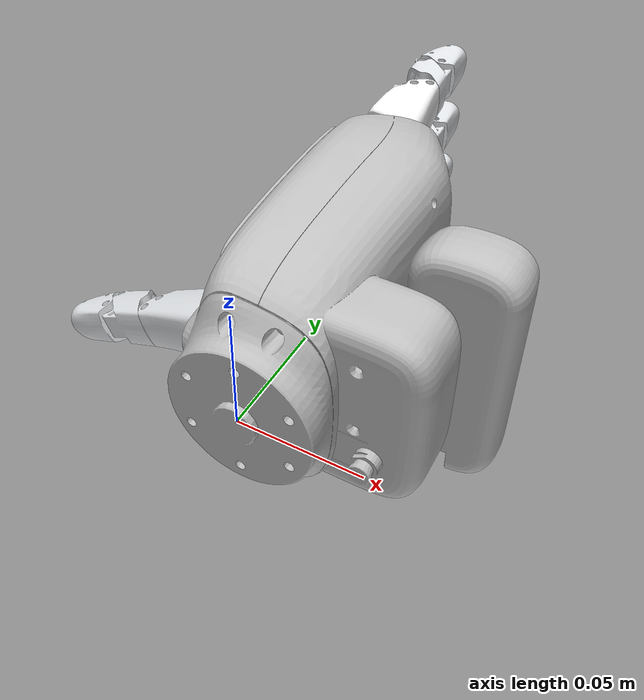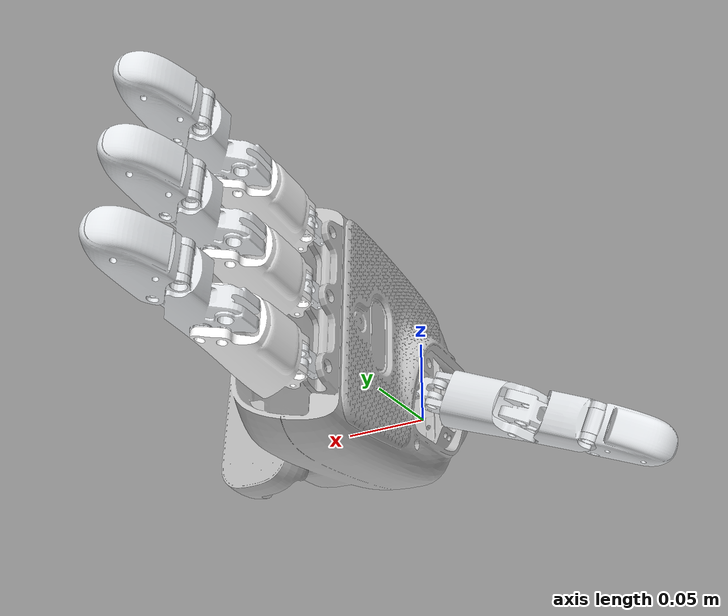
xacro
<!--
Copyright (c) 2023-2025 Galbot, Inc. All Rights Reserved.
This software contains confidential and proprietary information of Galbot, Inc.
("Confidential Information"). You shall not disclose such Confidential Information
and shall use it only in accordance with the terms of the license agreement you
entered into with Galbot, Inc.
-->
<?xml version="1.0"?>

<robot name="test_hand"
    xmlns:xacro="http://ros.org/wiki/xacro">
    <!-- Include-->
    <xacro:include filename="$(find galbot_description)/urdf/galbot_one_charlie/galbot_hand/galbot_left_hand.xacro" />
    <!-- Properties -->
    <xacro:property name="M_PI" value="3.1415926535897931" />
    <!-- Parent link -->
    <link name="base_link" />
    <xacro:galbot_left_hand parent="base_link">
        <origin xyz="0 0 0" rpy="0 0 0" />
    </xacro:galbot_left_hand>
</robot>

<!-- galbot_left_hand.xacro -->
<robot xmlns:xacro="http://www.ros.org/wiki/xacro" name="galbot_left_hand">
  <xacro:macro name="inertial_matrix" params="mass">
    <inertial>
      <mass value="${mass}"/>
      <inertia ixx="1.0" ixy="0.0" ixz="0.0" iyy="0.5" iyz="0.0" izz="1.0"/>
    </inertial>
  </xacro:macro>
  <xacro:macro name="Box_inertial_matrix" params="m l w h">
    <inertial>
      <mass value="${m}"/>
      <inertia ixx="${m*(h*h + l*l)/12}" ixy="0" ixz="0" iyy="${m*(w*w + l*l)/12}" iyz="0" izz="${m*(w*w + h*h)/12}"/>
    </inertial>
  </xacro:macro>
  <xacro:macro name="galbot_left_hand" params="parent *origin name:=galbot_hand">
    <xacro:property name="M_PI" value="3.1415926535897931"/>

    <joint name="${name}_joint" type="fixed">
      <xacro:insert_block name="origin"/>
      <parent link="${parent}"/>
      <child link="${name}_base_link"/>
    </joint>
    <link name="${name}_base_link">
      <inertial>
        <origin xyz="0.0082426499546434 0.0688400826362062 0.00066904058606776" rpy="0 0 0"/>
        <mass value="0.250361410722848"/>
        <inertia ixx="0.000451009774708177" ixy="4.34532396591773E-06" ixz="9.13519050609304E-07" iyy="0.00028655291942187" iyz="6.75652280731711E-06" izz="0.000219205453464452"/>
      </inertial>
      <visual>
        <origin xyz="0 0 0" rpy="0 0 0"/>
        <geometry>
          <mesh
            filename="package://galbot_one_charlie_description/meshes/galbot_hand/base_link_left.stl"/>
        </geometry>
        <material name="">
          <color rgba="0.752941176470588 0.752941176470588 0.752941176470588 1"/>
        </material>
      </visual>
      <collision>
        <origin xyz="0 0 0" rpy="0 0 0"/>
        <geometry>
          <mesh
            filename="package://galbot_one_charlie_description/meshes/galbot_hand/base_link_left.stl"/>
        </geometry>
      </collision>
    </link>
    <link name="${name}_finger1_link1">
      <inertial>
        <origin xyz="0.0049990479204143 8.87043942465748E-09 1.56826572561553E-10" rpy="0 0 0"/>
        <mass value="0.000494193898584918"/>
        <inertia ixx="5.34240304366998E-09" ixy="1.40165523546363E-14" ixz="1.58814446596312E-16" iyy="1.3373535733049E-08" iyz="-8.36240707742665E-16" izz="1.57645609851102E-08"/>
      </inertial>
      <visual>
        <origin xyz="0 0 0" rpy="0 0 0"/>
        <geometry>
          <mesh
            filename="package://galbot_one_charlie_description/meshes/galbot_hand/left_finger1_link1.stl"/>
        </geometry>
        <material name="">
          <color rgba="0.898039215686275 0.909803921568627 0.92156862745098 1"/>
        </material>
      </visual>
      <collision>
        <origin xyz="0 0 0" rpy="0 0 0"/>
        <geometry>
          <mesh
            filename="package://galbot_one_charlie_description/meshes/galbot_hand/left_finger1_link1.stl"/>
        </geometry>
      </collision>
    </link>
    <joint name="${name}_finger1_joint1" type="revolute">
      <origin xyz="-0.03285 0.069 -0.0138" rpy="-1.5708 0.43633 -3.1416"/>
      <parent link="${name}_base_link"/>
      <child link="${name}_finger1_link1"/>
      <axis xyz="0 0 1"/>
      <limit lower="-0.436333" upper="0.436333" effort="10" velocity="1.5"/>
    </joint>
    <link name="${name}_finger1_link2">
      <inertial>
        <origin xyz="-0.019763814098464 0.0119884370804753 -6.74106527299989E-08" rpy="0 0 0"/>
         <mass value="0.0104414043171337"/>
        <inertia ixx="2.26938802597705E-06" ixy="6.95671474272708E-07" ixz="4.84261342651834E-12" iyy="1.95674472909177E-06" iyz="-1.63443414489251E-11" izz="2.6403675046715E-06"/>
      </inertial>
      <visual>
         <origin xyz="0 0 0" rpy="0 0 0"/>
        <geometry>
          <mesh
            filename="package://galbot_one_charlie_description/meshes/galbot_hand/left_finger1_link2.stl"/>
        </geometry>
        <material name="">
          <color rgba="0.898039215686275 0.909803921568627 0.92156862745098 1"/>
        </material>
      </visual>
      <collision>
         <origin xyz="0 0 0" rpy="0 0 0"/>
        <geometry>
          <mesh
            filename="package://galbot_one_charlie_description/meshes/galbot_hand/left_finger1_link2.stl"/>
        </geometry>
      </collision>
    </link>
    <joint name="${name}_finger1_joint2" type="revolute">
      <origin xyz="0.012 0 0" rpy="-1.5708 0.86998 -3.1416"/>
      <parent link="${name}_finger1_link1"/>
      <child link="${name}_finger1_link2"/>
      <axis xyz="0 0 -1"/>
      <limit lower="0" upper="1.50551734" effort="10" velocity="1.5"/>
    </joint>
    <link name="${name}_finger1_link3">
      <inertial>
         <origin xyz="0.0120682639015778 0.015724151161845 -9.74408693628359E-08" rpy="0 0 0"/>
         <mass value="0.00769687851220105"/>
        <inertia ixx="1.17260853356787E-06" ixy="-4.07923446815966E-07" ixz="-5.33297576143919E-12" iyy="8.88278129831767E-07" iyz="6.47568421551231E-12" izz="1.48324891392563E-06"/>
      </inertial>
      <visual>
         <origin xyz="0 0 0" rpy="0 0 0"/>
        <geometry>
          <mesh
            filename="package://galbot_one_charlie_description/meshes/galbot_hand/left_finger1_link3.stl"/>
        </geometry>
        <material name="">
          <color rgba="0.898039215686275 0.909803921568627 0.92156862745098 1"/>
        </material>
      </visual>
      <collision>
         <origin xyz="0 0 0" rpy="0 0 0"/>
        <geometry>
          <mesh
            filename="package://galbot_one_charlie_description/meshes/galbot_hand/left_finger1_link3.stl"/>
        </geometry>
      </collision>
    </link>
    <joint name="${name}_finger1_joint3" type="revolute">
      <origin xyz="-0.03095 0.030567 0" rpy="-3.1416 0 -3.0848"/>
      <parent link="${name}_finger1_link2"/>
      <child link="${name}_finger1_link3"/>
      <axis xyz="0 0 1"/>
      <limit lower="0" upper="1.23805297" effort="10" velocity="1.5"/>
    </joint>
    <link name="${name}_finger1_link4">
      <inertial>
         <origin xyz="0.0137391542777864 0.0052384549865301 6.8093028111893E-08" rpy="0 0 0"/>
         <mass value="0.00601170990282722"/>
        <inertia ixx="3.64164120565208E-07" ixy="9.03182223249479E-08" ixz="4.11160375971961E-11" iyy="6.52648406186183E-07" iyz="2.64088107653073E-11" izz="5.53508591348595E-07"/>
      </inertial>
      <visual>
         <origin xyz="0 0 0" rpy="0 0 0"/>
        <geometry>
          <mesh
            filename="package://galbot_one_charlie_description/meshes/galbot_hand/left_finger1_link4.stl"/>
        </geometry>
        <material name="">
          <color rgba="0.898039215686275 0.909803921568627 0.92156862745098 1"/>
        </material>
      </visual>
      <collision>
         <origin xyz="0 0 0" rpy="0 0 0"/>
        <geometry>
          <mesh
            filename="package://galbot_one_charlie_description/meshes/galbot_hand/left_finger1_link4.stl"/>
        </geometry>
      </collision>
    </link>
    <joint name="${name}_finger1_joint4" type="revolute">
      <origin xyz="0.024254 0.030534 0" rpy="0 0 0.82545"/>
      <parent link="${name}_finger1_link3"/>
      <child link="${name}_finger1_link4"/>
      <axis xyz="0 0 1"/>
      <limit lower="0" upper="1.07637884" effort="10" velocity="1.5"/>
    </joint>
    <link name="${name}_finger1_end_effector_link" />
    <joint name="${name}_finger1_end_effector_joint" type="fixed">
      <origin xyz="0.021345 0.006117 0" rpy="0 0 0"/>
      <parent link="${name}_finger1_link4"/>
      <child link="${name}_finger1_end_effector_link"/>
      <axis xyz="0 0 1"/>
    </joint>
    <link name="${name}_finger2_link1">
      <inertial>
         <origin xyz="0.00499905936590745 3.68050198868996E-09 -7.00310150147931E-10" rpy="0 0 0"/>
         <mass value="0.000494192567929613"/>
        <inertia ixx="5.34239855214459E-09" ixy="3.90839790058759E-15" ixz="-1.22441161075751E-15" iyy="1.33735101332351E-08" iyz="-1.15373298356861E-16" izz="1.57645319003349E-08"/>
      </inertial>
      <visual>
         <origin xyz="0 0 0" rpy="0 0 0"/>
        <geometry>
          <mesh
            filename="package://galbot_one_charlie_description/meshes/galbot_hand/left_finger2_link1.stl"/>
        </geometry>
        <material name="">
          <color rgba="0.898039215686275 0.909803921568627 0.92156862745098 1"/>
        </material>
      </visual>
      <collision>
         <origin xyz="0 0 0" rpy="0 0 0"/>
        <geometry>
          <mesh
            filename="package://galbot_one_charlie_description/meshes/galbot_hand/left_finger2_link1.stl"/>
        </geometry>
      </collision>
    </link>
    <joint name="${name}_finger2_joint1" type="revolute">
      <origin xyz="-0.02385 0.142 -0.0338" rpy="1.5708 0 1.5708"/>
      <parent link="${name}_base_link"/>
      <child link="${name}_finger2_link1"/>
      <axis xyz="0 0 1"/>
      <limit lower="-0.436333" upper="0.436333" effort="10" velocity="1.5"/>
    </joint>
    <link name="${name}_finger2_link2">
      <inertial>
         <origin xyz="-0.0185286193226101 0.0108010517820986 8.01215642255507E-08" rpy="0 0 0"/>
         <mass value="0.0111711822126339"/>
        <inertia ixx="2.33104017787741E-06" ixy="6.93393208834101E-07" ixz="-1.44493245066058E-12" iyy="1.95499944751113E-06" iyz="7.98730979349519E-12" izz="2.63422330573402E-06"/>
      </inertial>
      <visual>
         <origin xyz="0 0 0" rpy="0 0 0"/>
        <geometry>
          <mesh
            filename="package://galbot_one_charlie_description/meshes/galbot_hand/left_finger2_link2.stl"/>
        </geometry>
        <material name="">
          <color rgba="1 1 1 1"/>
        </material>
      </visual>
      <collision>
         <origin xyz="0 0 0" rpy="0 0 0"/>
        <geometry>
          <mesh
            filename="package://galbot_one_charlie_description/meshes/galbot_hand/left_finger2_link2.stl"/>
        </geometry>
      </collision>
    </link>
    <joint name="${name}_finger2_joint2" type="revolute">
      <origin xyz="0.012 0 0" rpy="-1.5708 0.86998 -3.1416"/>
      <parent link="${name}_finger2_link1"/>
      <child link="${name}_finger2_link2"/>
      <axis xyz="0 0 -1"/>
      <limit lower="0" upper="1.45958033" effort="10" velocity="1.5"/>
    </joint>
    <link name="${name}_finger2_link3">
      <inertial>
         <origin xyz="0.00913593443840779 0.0129569323748436 1.56005088376998E-08" rpy="0 0 0"/>
         <mass value="0.00617814859218431"/>
        <inertia ixx="7.57873231944315E-07" ixy="-2.62117028420887E-07" ixz="9.57458681916455E-13" iyy="6.81948975016763E-07" iyz="-9.35106110683383E-13" izz="1.02516475055295E-06"/>
      </inertial>
      <visual>
         <origin xyz="0 0 0" rpy="0 0 0"/>
        <geometry>
          <mesh
            filename="package://galbot_one_charlie_description/meshes/galbot_hand/left_finger2_link3.stl"/>
        </geometry>
        <material name="">
          <color rgba="0.898039215686275 0.909803921568627 0.92156862745098 1"/>
        </material>
      </visual>
      <collision>
         <origin xyz="0 0 0" rpy="0 0 0"/>
        <geometry>
          <mesh
            filename="package://galbot_one_charlie_description/meshes/galbot_hand/left_finger2_link3.stl"/>
        </geometry>
      </collision>
    </link>
    <joint name="${name}_finger2_joint3" type="revolute">
      <origin xyz="-0.029716 0.029398 0" rpy="-3.1416 0 -3.0848"/>
      <parent link="${name}_finger2_link2"/>
      <child link="${name}_finger2_link3"/>
      <axis xyz="0 0 1"/>
      <limit lower="0" upper="1.42521995" effort="10" velocity="1.5"/>
    </joint>
    <link name="${name}_finger2_link4">
      <inertial>
         <origin xyz="0.0125505752127241 0.00560132755653497 3.29077335703356E-08" rpy="0 0 0"/>
         <mass value="0.00601173271035027"/>
        <inertia ixx="3.57653416751526E-07" ixy="7.8954829463275E-08" ixz="2.63407713962598E-11" iyy="6.59158506333203E-07" iyz="1.6760511676366E-11" izz="5.53512603794612E-07"/>
      </inertial>
      <visual>
         <origin xyz="0 0 0" rpy="0 0 0"/>
        <geometry>
          <mesh
            filename="package://galbot_one_charlie_description/meshes/galbot_hand/left_finger2_link4.stl"/>
        </geometry>
        <material name="">
          <color rgba="0.898039215686275 0.909803921568627 0.92156862745098 1"/>
        </material>
      </visual>
      <collision>
         <origin xyz="0 0 0" rpy="0 0 0"/>
        <geometry>
          <mesh
            filename="package://galbot_one_charlie_description/meshes/galbot_hand/left_finger2_link4.stl"/>
        </geometry>
      </collision>
    </link>
    <joint name="${name}_finger2_joint4" type="revolute">
      <origin xyz="0.02113 0.025978 0" rpy="0 0 0.82545"/>
      <parent link="${name}_finger2_link3"/>
      <child link="${name}_finger2_link4"/>
      <axis xyz="0 0 1"/>
      <limit lower="0" upper="1.33165452" effort="10" velocity="1.5"/>
    </joint>
    <link name="${name}_finger2_end_effector_link" />
    <joint name="${name}_finger2_end_effector_joint" type="fixed">
      <origin xyz="0.021094 0.0069335 0" rpy="0 0 0"/>
      <parent link="${name}_finger2_link4"/>
      <child link="${name}_finger2_end_effector_link"/>
      <axis xyz="0 0 1"/>
    </joint>
    <link name="${name}_finger3_link1">
      <inertial>
         <origin xyz="0.00499905936590745 3.68050199345271E-09 -7.00310146678484E-10" rpy="0 0 0"/>
         <mass value="0.000494192567929613"/>
        <inertia ixx="5.34239855214459E-09" ixy="3.90839790635189E-15" ixz="-1.22441161105375E-15" iyy="1.33735101332351E-08" iyz="-1.1537329821269E-16" izz="1.57645319003348E-08"/>
      </inertial>
      <visual>
         <origin xyz="0 0 0" rpy="0 0 0"/>
        <geometry>
          <mesh
            filename="package://galbot_one_charlie_description/meshes/galbot_hand/left_finger3_link1.stl"/>
        </geometry>
        <material name="">
          <color rgba="0.898039215686275 0.909803921568627 0.92156862745098 1"/>
        </material>
      </visual>
      <collision>
         <origin xyz="0 0 0" rpy="0 0 0"/>
        <geometry>
          <mesh
            filename="package://galbot_one_charlie_description/meshes/galbot_hand/left_finger3_link1.stl"/>
        </geometry>
      </collision>
    </link>
    <joint name="${name}_finger3_joint1" type="revolute">
      <origin xyz="-0.02385 0.142 0" rpy="1.5708 0 1.5708"/>
      <parent link="${name}_base_link"/>
      <child link="${name}_finger3_link1"/>
      <axis xyz="0 0 1"/>
      <limit lower="-0.436333" upper="0.436333" effort="10" velocity="1.5"/>
    </joint>
    <link name="${name}_finger3_link2">
      <inertial>
         <origin xyz="-0.0185286191813749 0.0108010516917097 8.01126181088074E-08" rpy="0 0 0"/>
         <mass value="0.0111711821236026"/>
        <inertia ixx="2.33104015993199E-06" ixy="6.93393190064569E-07" ixz="-1.44723057445807E-12" iyy="1.95499941589643E-06" iyz="7.98908075778866E-12" izz="2.63422326559113E-06"/>
      </inertial>
      <visual>
         <origin xyz="0 0 0" rpy="0 0 0"/>
        <geometry>
          <mesh
            filename="package://galbot_one_charlie_description/meshes/galbot_hand/left_finger3_link2.stl"/>
        </geometry>
        <material name="">
          <color rgba="1 1 1 1"/>
        </material>
      </visual>
      <collision>
         <origin xyz="0 0 0" rpy="0 0 0"/>
        <geometry>
          <mesh
            filename="package://galbot_one_charlie_description/meshes/galbot_hand/left_finger3_link2.stl"/>
        </geometry>
      </collision>
    </link>
    <joint name="${name}_finger3_joint2" type="revolute">
      <origin xyz="0.0119999915848734 0 0" rpy="-1.57079631687457 0.869975067859879 -3.14159265358979"/>
      <parent link="${name}_finger3_link1"/>
      <child link="${name}_finger3_link2"/>
      <axis xyz="0 0 -1"/>
      <limit lower="0" upper="1.45958033" effort="10" velocity="1.5"/>
    </joint>
    <link name="${name}_finger3_link3">
      <inertial>
         <origin xyz="0.00913593438482067 0.0129569324811332 1.56828517741681E-08" rpy="0 0 0"/>
         <mass value="0.00617814852272354"/>
        <inertia ixx="7.57873218145056E-07" ixy="-2.6211703055126E-07" ixz="9.55815252068849E-13" iyy="6.81948971045792E-07" iyz="-9.28567749181378E-13" izz="1.02516474015375E-06"/>
      </inertial>
      <visual>
         <origin xyz="0 0 0" rpy="0 0 0"/>
        <geometry>
          <mesh
            filename="package://galbot_one_charlie_description/meshes/galbot_hand/left_finger3_link3.stl"/>
        </geometry>
        <material name="">
          <color rgba="0.898039215686275 0.909803921568627 0.92156862745098 1"/>
        </material>
      </visual>
      <collision>
         <origin xyz="0 0 0" rpy="0 0 0"/>
        <geometry>
          <mesh
            filename="package://galbot_one_charlie_description/meshes/galbot_hand/left_finger3_link3.stl"/>
        </geometry>
      </collision>
    </link>
    <joint name="${name}_finger3_joint3" type="revolute">
      <origin xyz="-0.0297156396415835 0.0293976318891706 0" rpy="-3.14159264368545 0 -3.08482058368093"/>
      <parent link="${name}_finger3_link2"/>
      <child link="${name}_finger3_link3"/>
      <axis xyz="0 0 1"/>
      <limit lower="0" upper="1.42521995" effort="10" velocity="1.5"/>
    </joint>
    <link name="${name}_finger3_link4">
      <inertial>
         <origin xyz="0.012550580506921 0.00560131977575767 3.83736363310239E-08" rpy="0 0 0"/>
         <mass value="0.00601173996414697"/>
        <inertia ixx="3.57653695977901E-07" ixy="7.8955015562208E-08" ixz="2.61268011496655E-11" iyy="6.59158954123838E-07" iyz="1.69017218847581E-11" izz="5.53513017556934E-07"/>
      </inertial>
      <visual>
         <origin xyz="0 0 0" rpy="0 0 0"/>
        <geometry>
          <mesh
            filename="package://galbot_one_charlie_description/meshes/galbot_hand/left_finger3_link4.stl"/>
        </geometry>
        <material name="">
          <color rgba="0.898039215686275 0.909803921568627 0.92156862745098 1"/>
        </material>
      </visual>
      <collision>
         <origin xyz="0 0 0" rpy="0 0 0"/>
        <geometry>
          <mesh
            filename="package://galbot_one_charlie_description/meshes/galbot_hand/left_finger3_link4.stl"/>
        </geometry>
      </collision>
    </link>
    <joint name="${name}_finger3_joint4" type="revolute">
      <origin xyz="0.0211295881742376 0.0259778848944081 0" rpy="0 0 0.825449979072216"/>
      <parent link="${name}_finger3_link3"/>
      <child link="${name}_finger3_link4"/>
      <axis xyz="0 0 1"/>
      <limit lower="0" upper="1.33165452" effort="10" velocity="1.5"/>
    </joint>
    <link name="${name}_finger3_end_effector_link" />
    <joint name="${name}_finger3_end_effector_joint" type="fixed">
      <origin xyz="0.0210938445145526 0.0069334786960683 0" rpy="0 0 0"/>
      <parent link="${name}_finger3_link4"/>
      <child link="${name}_finger3_end_effector_link"/>
      <axis xyz="0 0 1"/>
    </joint>
    <link name="${name}_finger4_link1">
      <inertial>
         <origin xyz="0.00499905936590745 3.68050198651382E-09 -6.71515757930119E-10" rpy="0 0 0"/>
         <mass value="0.000494192567929614"/>
        <inertia ixx="5.34239855214462E-09" ixy="3.9083979130977E-15" ixz="-1.28444263028581E-15" iyy="1.33735101332351E-08" iyz="-1.30668837972129E-16" izz="1.57645319003348E-08"/>
      </inertial>
      <visual>
         <origin xyz="0 0 0" rpy="0 0 0"/>
        <geometry>
          <mesh
            filename="package://galbot_one_charlie_description/meshes/galbot_hand/left_finger4_link1.stl"/>
        </geometry>
        <material name="">
          <color rgba="0.898039215686275 0.909803921568627 0.92156862745098 1"/>
        </material>
      </visual>
      <collision>
         <origin xyz="0 0 0" rpy="0 0 0"/>
        <geometry>
          <mesh
            filename="package://galbot_one_charlie_description/meshes/galbot_hand/left_finger4_link1.stl"/>
        </geometry>
      </collision>
    </link>
    <joint name="${name}_finger4_joint1" type="revolute">
      <origin xyz="-0.0238500029693464 0.142000008484246 0.0337999986286747" rpy="1.5707963267949 0 1.5707963267949"/>
      <parent link="${name}_base_link"/>
      <child link="${name}_finger4_link1"/>
      <axis xyz="0 0 1"/>
      <limit lower="-0.436333" upper="0.436333" effort="10" velocity="1.5"/>
    </joint>
    <link name="${name}_finger4_link2">
      <inertial>
         <origin xyz="-0.0185286192452257 0.0108010517349734 8.01998765731504E-08" rpy="0 0 0"/>
         <mass value="0.0111711821630483"/>
        <inertia ixx="2.33104016883598E-06" ixy="6.93393199207108E-07" ixz="-1.44363415591741E-12" iyy="1.95499943043111E-06" iyz="7.98465537401374E-12" izz="2.63422328484608E-06"/>
      </inertial>
      <visual>
         <origin xyz="0 0 0" rpy="0 0 0"/>
        <geometry>
          <mesh
            filename="package://galbot_one_charlie_description/meshes/galbot_hand/left_finger4_link2.stl"/>
        </geometry>
        <material name="">
          <color rgba="1 1 1 1"/>
        </material>
      </visual>
      <collision>
         <origin xyz="0 0 0" rpy="0 0 0"/>
        <geometry>
          <mesh
            filename="package://galbot_one_charlie_description/meshes/galbot_hand/left_finger4_link2.stl"/>
        </geometry>
      </collision>
    </link>
    <joint name="${name}_finger4_joint2" type="revolute">
      <origin xyz="0.0119999915848734 0 0" rpy="-1.57079633671522 0.869975073619836 3.14159264600756"/>
      <parent link="${name}_finger4_link1"/>
      <child link="${name}_finger4_link2"/>
      <axis xyz="0 0 -1"/>
      <limit lower="0" upper="1.45958033" effort="10" velocity="1.5"/>
    </joint>
    <link name="${name}_finger4_link3">
      <inertial>
         <origin xyz="0.00913593425616056 0.0129569327858307 1.59461179954912E-08" rpy="0 0 0"/>
         <mass value="0.00617814830189644"/>
        <inertia ixx="7.57873178060449E-07" ixy="-2.62117034401506E-07" ixz="9.53124838056616E-13" iyy="6.81948958018871E-07" iyz="-9.09691463062282E-13" izz="1.02516471185422E-06"/>
      </inertial>
      <visual>
         <origin xyz="0 0 0" rpy="0 0 0"/>
        <geometry>
          <mesh
            filename="package://galbot_one_charlie_description/meshes/galbot_hand/left_finger4_link3.stl"/>
        </geometry>
        <material name="">
          <color rgba="0.898039215686275 0.909803921568627 0.92156862745098 1"/>
        </material>
      </visual>
      <collision>
         <origin xyz="0 0 0" rpy="0 0 0"/>
        <geometry>
          <mesh
            filename="package://galbot_one_charlie_description/meshes/galbot_hand/left_finger4_link3.stl"/>
        </geometry>
      </collision>
    </link>
    <joint name="${name}_finger4_joint3" type="revolute">
      <origin xyz="-0.029715639641601 0.0293976318891584 0" rpy="-3.14159265358979 0 -3.08482058368093"/>
      <parent link="${name}_finger4_link2"/>
      <child link="${name}_finger4_link3"/>
      <axis xyz="0 0 1"/>
      <limit lower="0" upper="1.42521995" effort="10" velocity="1.5"/>
    </joint>
    <link name="${name}_finger4_link4">
      <inertial>
         <origin xyz="0.0125505805069208 0.00560131977575771 3.83736362685738E-08" rpy="0 0 0"/>
         <mass value="0.00601173996414686"/>
        <inertia ixx="3.57653695977895E-07" ixy="7.89550155622099E-08" ixz="2.61268011540066E-11" iyy="6.59158954123818E-07" iyz="1.69017218871917E-11" izz="5.53513017556917E-07"/>
      </inertial>
      <visual>
         <origin xyz="0 0 0" rpy="0 0 0"/>
        <geometry>
          <mesh
            filename="package://galbot_one_charlie_description/meshes/galbot_hand/left_finger4_link4.stl"/>
        </geometry>
        <material name="">
          <color rgba="0.898039215686275 0.909803921568627 0.92156862745098 1"/>
        </material>
      </visual>
      <collision>
         <origin xyz="0 0 0" rpy="0 0 0"/>
        <geometry>
          <mesh
            filename="package://galbot_one_charlie_description/meshes/galbot_hand/left_finger4_link4.stl"/>
        </geometry>
      </collision>
    </link>
    <joint name="${name}_finger4_joint4" type="revolute">
      <origin xyz="0.0211295881742195 0.0259778848944192 0" rpy="0 0 0.825449979072216"/>
      <parent link="${name}_finger4_link3"/>
      <child link="${name}_finger4_link4"/>
      <axis xyz="0 0 1"/>
      <limit lower="0" upper="1.33165452" effort="10" velocity="1.5"/>
    </joint>
    <link name="${name}_finger4_end_effector_link" />
    <joint name="${name}_finger4_end_effector_joint" type="fixed">
      <origin xyz="0.0210938445145526 0.00693347869606831 0" rpy="0 0 0"/>
      <parent link="${name}_finger4_link4"/>
      <child link="${name}_finger4_end_effector_link"/>
      <axis xyz="0 0 1"/>
    </joint>
    </xacro:macro>
</robot>
